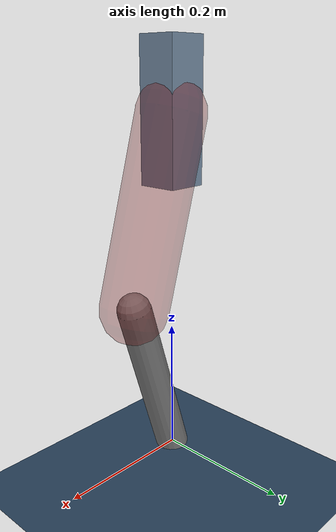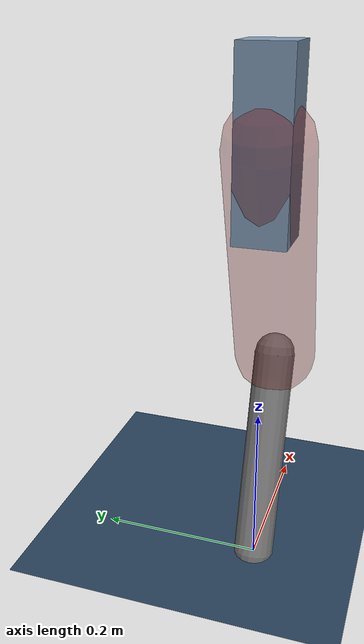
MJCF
<mujoco model="Hopper2D">
	<compiler inertiafromgeom="true" angle="radian" />
	<option timestep="0.001" integrator="implicit" cone="elliptic" solver="Newton" tolerance="1e-10" />

	<default>
		<geom contype="1" conaffinity="1" condim="3" friction="2 0.005 0.0001" solref="0.005 1" />
		<joint limited="true" damping="0.1" />
	</default>

	<asset>
		<texture name="skybox" type="skybox" builtin="gradient" rgb1=".4 .6 .8" rgb2="0 0 0" width="800" height="800" />
		<texture name="grid" type="2d" builtin="checker" rgb1=".1 .2 .3" rgb2=".2 .3 .4" width="300" height="300" mark="edge" markrgb=".2 .3 .4" />
		<material name="ground" texture="grid" texrepeat="1 1" texuniform="true" reflectance="0.1" />
		<material name="leg" rgba="0.5 0.6 0.7 1" />
	</asset>

	<worldbody>

		<geom name="floor" type="plane" size="5 5 0.25" material="ground" />

		<light directional="false" diffuse="0.8 0.8 0.8" specular="0.3 0.3 0.3" pos="0 0 2" dir="0 0 -1" />
		<light mode="targetbodycom" target="base" directional="false" diffuse="0.8 0.8 0.8" specular="0.3 0.3 0.3" pos="0 0 2" dir="0 0 -1" />

		<camera name="fixed" pos="0 -2 1" xyaxes="1 0 0 0 0 1" />
		<camera name="tracking" mode="trackcom" pos="0 -3 1" />

		<body name="root" pos="0 0 0.5164968689286654">
			<joint name="slide_x" type="slide" axis="1 0 0" range="-100 100" />
			<joint name="slide_z" type="slide" axis="0 0 1" range="0 10" />

			<body name="base" pos="0 0 0">
				<geom name="torso" type="box" size="0.03 0.03 0.1" mass="3.587" material="leg" />

				<body name="link1" pos="0 0 0" euler="0 1.2886755374582444 0">
					<joint type="hinge" axis="0 -1 0" pos="0 0 0" name="hinge1" limited="true" range="-3.14 3.14" stiffness="0" damping="0.1" />
					<geom name="thigh" type="capsule" fromto="0 0 0 0.2781798126998303 0 0" size="0.05" rgba="0.5 0 0 0.3" mass="0.9302854942895417" />

					<body name="link2" pos="0.2781798126998303 0 0" euler="0 0.5832970148546737 0">
						<joint type="hinge" axis="0 -1 0" pos="0 0 0" name="hinge2" limited="true" range="-3.14 3.14" stiffness="0" damping="0.1" />
						<geom name="shank" type="capsule" fromto="0 0 0 0.2610652983862346 0 0" size="0.025" mass="0.4516522387089877" />

					</body>
				</body>
			</body>
		</body>
	</worldbody>

	<actuator>
		<motor name="torque1" joint="hinge1" ctrlrange="-192.164817908542 192.164817908542" ctrllimited="true" gear="1" />
		<motor name="torque2" joint="hinge2" ctrlrange="-117.05718203428545 117.05718203428545" ctrllimited="true" gear="1" />
	</actuator>
</mujoco>
